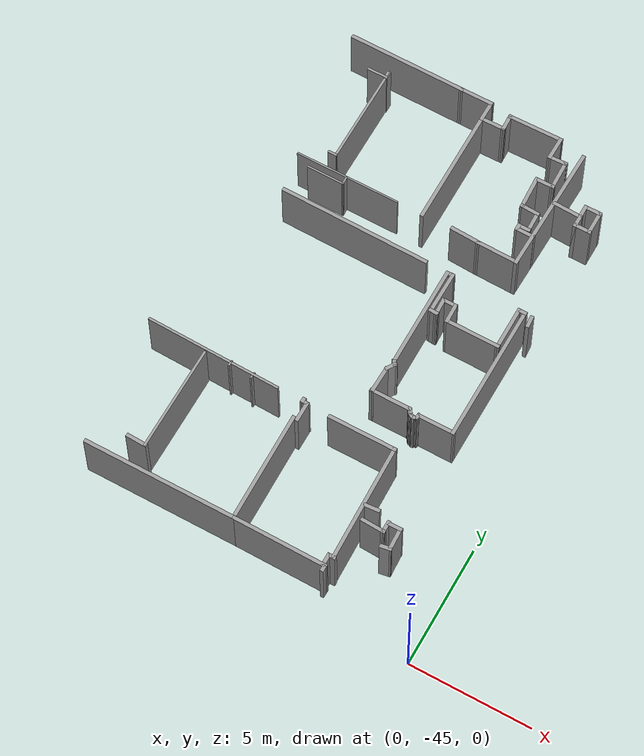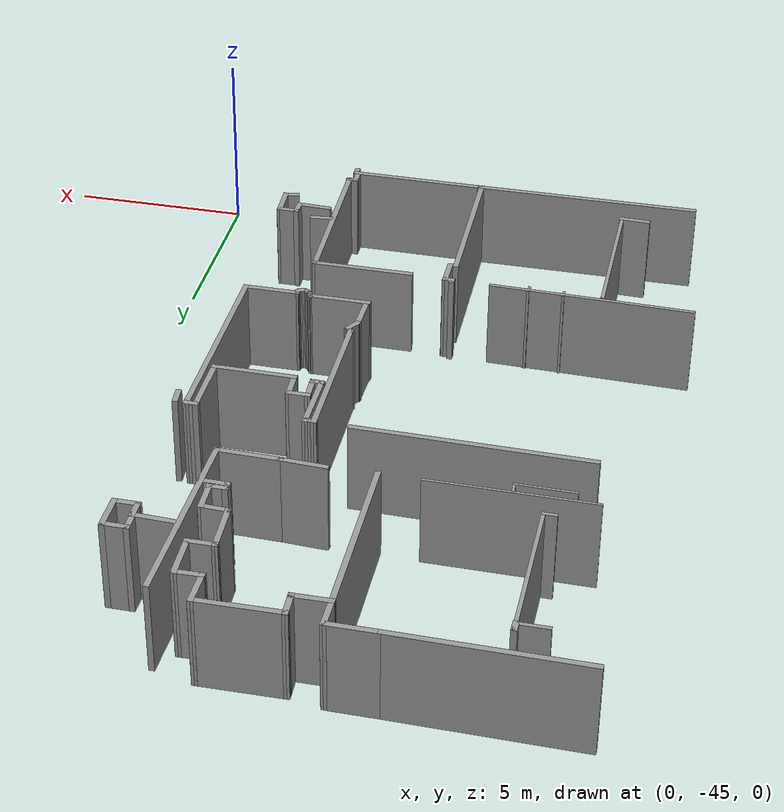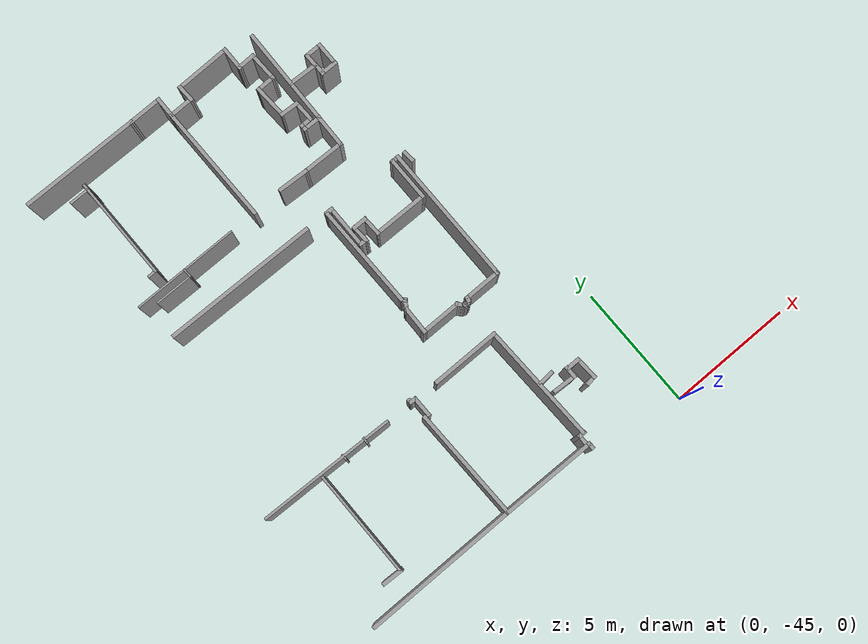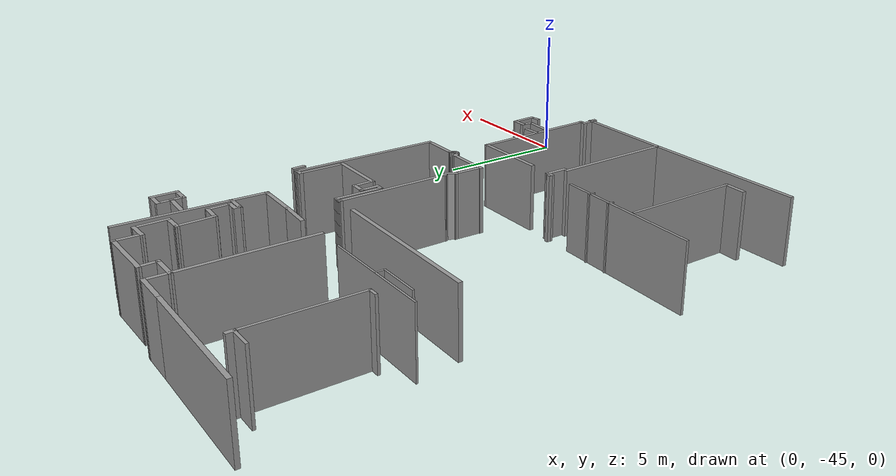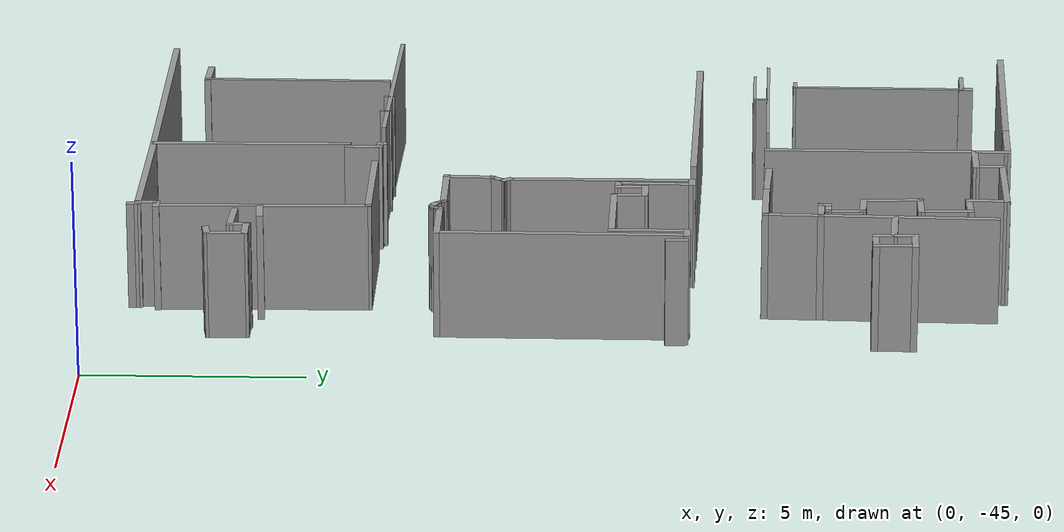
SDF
<sdf version="1.4">
 <model name="3ne_real">
  <pose>-14.229 -33.4428 0 0 -0 0</pose>
  <link name="Wall_179">
   <collision name="Wall_179_Collision">
    <geometry><box><size>5.30295 0.15 2.5</size></box></geometry>
    <pose>0 0 1.25 0 -0 0</pose>
   </collision>
   <visual name="Wall_179_Visual">
    <pose>0 0 1.25 0 -0 0</pose>
    <geometry><box><size>5.30295 0.15 2.5</size></box></geometry>
    <material>
     <script><uri>file://media/materials/scripts/gazebo.material</uri><name>Gazebo/Grey</name></script>
     <ambient>1 1 1 1</ambient>
    </material>
    <meta><layer>0</layer></meta>
   </visual>
   <pose>10.5847 6.03444 0 0 -0 -1.59507</pose>
  </link>
  <link name="Wall_181">
   <collision name="Wall_181_Collision">
    <geometry><box><size>1.76561 0.15 2.5</size></box></geometry>
    <pose>0 0 1.25 0 -0 0</pose>
   </collision>
   <visual name="Wall_181_Visual">
    <pose>0 0 1.25 0 -0 0</pose>
    <geometry><box><size>1.76561 0.15 2.5</size></box></geometry>
    <material>
     <script><uri>file://media/materials/scripts/gazebo.material</uri><name>Gazebo/Grey</name></script>
     <ambient>1 1 1 1</ambient>
    </material>
    <meta><layer>0</layer></meta>
   </visual>
   <pose>9.71486 3.47607 0 0 -0 3.12047</pose>
  </link>
  <link name="Wall_182">
   <collision name="Wall_182_Collision">
    <geometry><box><size>1.26576 0.15 2.5</size></box></geometry>
    <pose>0 0 1.25 0 -0 0</pose>
   </collision>
   <visual name="Wall_182_Visual">
    <pose>0 0 1.25 0 -0 0</pose>
    <geometry><box><size>1.26576 0.15 2.5</size></box></geometry>
    <material>
     <script><uri>file://media/materials/scripts/gazebo.material</uri><name>Gazebo/Grey</name></script>
     <ambient>1 1 1 1</ambient>
    </material>
    <meta><layer>0</layer></meta>
   </visual>
   <pose>8.3504 3.52156 0 0 -0 3.09062</pose>
  </link>
  <link name="Wall_184">
   <collision name="Wall_184_Collision">
    <geometry><box><size>4.86877 0.15 2.5</size></box></geometry>
    <pose>0 0 1.25 0 -0 0</pose>
   </collision>
   <visual name="Wall_184_Visual">
    <pose>0 0 1.25 0 -0 0</pose>
    <geometry><box><size>4.86877 0.15 2.5</size></box></geometry>
    <material>
     <script><uri>file://media/materials/scripts/gazebo.material</uri><name>Gazebo/Grey</name></script>
     <ambient>1 1 1 1</ambient>
    </material>
    <meta><layer>0</layer></meta>
   </visual>
   <pose>6.52544 5.87525 0 0 -0 1.57321</pose>
  </link>
  <link name="Wall_185">
   <collision name="Wall_185_Collision">
    <geometry><box><size>1.07108 0.15 2.5</size></box></geometry>
    <pose>0 0 1.25 0 -0 0</pose>
   </collision>
   <visual name="Wall_185_Visual">
    <pose>0 0 1.25 0 -0 0</pose>
    <geometry><box><size>1.07108 0.15 2.5</size></box></geometry>
    <material>
     <script><uri>file://media/materials/scripts/gazebo.material</uri><name>Gazebo/Grey</name></script>
     <ambient>1 1 1 1</ambient>
    </material>
    <meta><layer>0</layer></meta>
   </visual>
   <pose>6.98026 8.24031 0 0 -0 0.012345</pose>
  </link>
  <link name="Wall_186">
   <collision name="Wall_186_Collision">
    <geometry><box><size>0.741703 0.15 2.5</size></box></geometry>
    <pose>0 0 1.25 0 -0 0</pose>
   </collision>
   <visual name="Wall_186_Visual">
    <pose>0 0 1.25 0 -0 0</pose>
    <geometry><box><size>0.741703 0.15 2.5</size></box></geometry>
    <material>
     <script><uri>file://media/materials/scripts/gazebo.material</uri><name>Gazebo/Grey</name></script>
     <ambient>1 1 1 1</ambient>
    </material>
    <meta><layer>0</layer></meta>
   </visual>
   <pose>7.42939 8.54163 0 0 -0 1.60924</pose>
  </link>
  <link name="Wall_187">
   <collision name="Wall_187_Collision">
    <geometry><box><size>2.28792 0.15 2.5</size></box></geometry>
    <pose>0 0 1.25 0 -0 0</pose>
   </collision>
   <visual name="Wall_187_Visual">
    <pose>0 0 1.25 0 -0 0</pose>
    <geometry><box><size>2.28792 0.15 2.5</size></box></geometry>
    <material>
     <script><uri>file://media/materials/scripts/gazebo.material</uri><name>Gazebo/Grey</name></script>
     <ambient>1 1 1 1</ambient>
    </material>
    <meta><layer>0</layer></meta>
   </visual>
   <pose>8.48685 8.85432 0 0 -0 0.015956</pose>
  </link>
  <link name="Wall_188">
   <collision name="Wall_188_Collision">
    <geometry><box><size>1.00286 0.15 2.5</size></box></geometry>
    <pose>0 0 1.25 0 -0 0</pose>
   </collision>
   <visual name="Wall_188_Visual">
    <pose>0 0 1.25 0 -0 0</pose>
    <geometry><box><size>1.00286 0.15 2.5</size></box></geometry>
    <material>
     <script><uri>file://media/materials/scripts/gazebo.material</uri><name>Gazebo/Grey</name></script>
     <ambient>1 1 1 1</ambient>
    </material>
    <meta><layer>0</layer></meta>
   </visual>
   <pose>9.54999 8.44498 0 0 -0 -1.58413</pose>
  </link>
  <link name="Wall_189">
   <collision name="Wall_189_Collision">
    <geometry><box><size>0.798218 0.15 2.5</size></box></geometry>
    <pose>0 0 1.25 0 -0 0</pose>
   </collision>
   <visual name="Wall_189_Visual">
    <pose>0 0 1.25 0 -0 0</pose>
    <geometry><box><size>0.798218 0.15 2.5</size></box></geometry>
    <material>
     <script><uri>file://media/materials/scripts/gazebo.material</uri><name>Gazebo/Grey</name></script>
     <ambient>1 1 1 1</ambient>
    </material>
    <meta><layer>0</layer></meta>
   </visual>
   <pose>9.86836 8.02996 0 0 -0 0.035073</pose>
  </link>
  <link name="Wall_190">
   <collision name="Wall_190_Collision">
    <geometry><box><size>1.25347 0.15 2.5</size></box></geometry>
    <pose>0 0 1.25 0 -0 0</pose>
   </collision>
   <visual name="Wall_190_Visual">
    <pose>0 0 1.25 0 -0 0</pose>
    <geometry><box><size>1.25347 0.15 2.5</size></box></geometry>
    <material>
     <script><uri>file://media/materials/scripts/gazebo.material</uri><name>Gazebo/Grey</name></script>
     <ambient>1 1 1 1</ambient>
    </material>
    <meta><layer>0</layer></meta>
   </visual>
   <pose>10.2095 7.48986 0 0 -0 -1.53988</pose>
  </link>
  <link name="Wall_191">
   <collision name="Wall_191_Collision">
    <geometry><box><size>0.821245 0.15 2.5</size></box></geometry>
    <pose>0 0 1.25 0 -0 0</pose>
   </collision>
   <visual name="Wall_191_Visual">
    <pose>0 0 1.25 0 -0 0</pose>
    <geometry><box><size>0.821245 0.15 2.5</size></box></geometry>
    <material>
     <script><uri>file://media/materials/scripts/gazebo.material</uri><name>Gazebo/Grey</name></script>
     <ambient>1 1 1 1</ambient>
    </material>
    <meta><layer>0</layer></meta>
   </visual>
   <pose>9.8911 6.93271 0 0 -0 -3.12465</pose>
  </link>
  <link name="Wall_192">
   <collision name="Wall_192_Collision">
    <geometry><box><size>1.41341 0.15 2.5</size></box></geometry>
    <pose>0 0 1.25 0 -0 0</pose>
   </collision>
   <visual name="Wall_192_Visual">
    <pose>0 0 1.25 0 -0 0</pose>
    <geometry><box><size>1.41341 0.15 2.5</size></box></geometry>
    <material>
     <script><uri>file://media/materials/scripts/gazebo.material</uri><name>Gazebo/Grey</name></script>
     <ambient>1 1 1 1</ambient>
    </material>
    <meta><layer>0</layer></meta>
   </visual>
   <pose>9.5841 6.29596 0 0 -0 -1.52578</pose>
  </link>
  <link name="Wall_193">
   <collision name="Wall_193_Collision">
    <geometry><box><size>0.81037 0.15 2.5</size></box></geometry>
    <pose>0 0 1.25 0 -0 0</pose>
   </collision>
   <visual name="Wall_193_Visual">
    <pose>0 0 1.25 0 -0 0</pose>
    <geometry><box><size>0.81037 0.15 2.5</size></box></geometry>
    <material>
     <script><uri>file://media/materials/scripts/gazebo.material</uri><name>Gazebo/Grey</name></script>
     <ambient>1 1 1 1</ambient>
    </material>
    <meta><layer>0</layer></meta>
   </visual>
   <pose>9.94227 5.64784 0 0 -0 -0.051678</pose>
  </link>
  <link name="Wall_194">
   <collision name="Wall_194_Collision">
    <geometry><box><size>0.912163 0.15 2.5</size></box></geometry>
    <pose>0 0 1.25 0 -0 0</pose>
   </collision>
   <visual name="Wall_194_Visual">
    <pose>0 0 1.25 0 -0 0</pose>
    <geometry><box><size>0.912163 0.15 2.5</size></box></geometry>
    <material>
     <script><uri>file://media/materials/scripts/gazebo.material</uri><name>Gazebo/Grey</name></script>
     <ambient>1 1 1 1</ambient>
    </material>
    <meta><layer>0</layer></meta>
   </visual>
   <pose>10.2834 5.24987 0 0 -0 -1.54095</pose>
  </link>
  <link name="Wall_195">
   <collision name="Wall_195_Collision">
    <geometry><box><size>0.547967 0.15 2.5</size></box></geometry>
    <pose>0 0 1.25 0 -0 0</pose>
   </collision>
   <visual name="Wall_195_Visual">
    <pose>0 0 1.25 0 -0 0</pose>
    <geometry><box><size>0.547967 0.15 2.5</size></box></geometry>
    <material>
     <script><uri>file://media/materials/scripts/gazebo.material</uri><name>Gazebo/Grey</name></script>
     <ambient>1 1 1 1</ambient>
    </material>
    <meta><layer>0</layer></meta>
   </visual>
   <pose>10.0958 4.86896 0 0 -0 3.14159</pose>
  </link>
  <link name="Wall_197">
   <collision name="Wall_197_Collision">
    <geometry><box><size>0.309593 0.15 2.5</size></box></geometry>
    <pose>0 0 1.25 0 -0 0</pose>
   </collision>
   <visual name="Wall_197_Visual">
    <pose>0 0 1.25 0 -0 0</pose>
    <geometry><box><size>0.309593 0.15 2.5</size></box></geometry>
    <material>
     <script><uri>file://media/materials/scripts/gazebo.material</uri><name>Gazebo/Grey</name></script>
     <ambient>1 1 1 1</ambient>
    </material>
    <meta><layer>0</layer></meta>
   </visual>
   <pose>9.89679 4.78937 0 0 -0 -1.5708</pose>
  </link>
  <link name="Wall_198">
   <collision name="Wall_198_Collision">
    <geometry><box><size>0.809489 0.15 2.5</size></box></geometry>
    <pose>0 0 1.25 0 -0 0</pose>
   </collision>
   <visual name="Wall_198_Visual">
    <pose>0 0 1.25 0 -0 0</pose>
    <geometry><box><size>0.809489 0.15 2.5</size></box></geometry>
    <material>
     <script><uri>file://media/materials/scripts/gazebo.material</uri><name>Gazebo/Grey</name></script>
     <ambient>1 1 1 1</ambient>
    </material>
    <meta><layer>0</layer></meta>
   </visual>
   <pose>10.2265 4.70409 0 0 -0 -0.01724</pose>
  </link>
  <link name="Wall_200">
   <collision name="Wall_200_Collision">
    <geometry><box><size>0.905609 0.15 2.5</size></box></geometry>
    <pose>0 0 1.25 0 -0 0</pose>
   </collision>
   <visual name="Wall_200_Visual">
    <pose>0 0 1.25 0 -0 0</pose>
    <geometry><box><size>0.905609 0.15 2.5</size></box></geometry>
    <material>
     <script><uri>file://media/materials/scripts/gazebo.material</uri><name>Gazebo/Grey</name></script>
     <ambient>1 1 1 1</ambient>
    </material>
    <meta><layer>0</layer></meta>
   </visual>
   <pose>6.52348 8.61229 0 0 -0 1.56093</pose>
  </link>
  <link name="Wall_201">
   <collision name="Wall_201_Collision">
    <geometry><box><size>1.43145 0.15 2.5</size></box></geometry>
    <pose>0 0 1.25 0 -0 0</pose>
   </collision>
   <visual name="Wall_201_Visual">
    <pose>0 0 1.25 0 -0 0</pose>
    <geometry><box><size>1.43145 0.15 2.5</size></box></geometry>
    <material>
     <script><uri>file://media/materials/scripts/gazebo.material</uri><name>Gazebo/Grey</name></script>
     <ambient>1 1 1 1</ambient>
    </material>
    <meta><layer>0</layer></meta>
   </visual>
   <pose>5.88648 8.98996 0 0 -0 3.14159</pose>
  </link>
  <link name="Wall_202">
   <collision name="Wall_202_Collision">
    <geometry><box><size>4.8837 0.15 2.5</size></box></geometry>
    <pose>0 0 1.25 0 -0 0</pose>
   </collision>
   <visual name="Wall_202_Visual">
    <pose>0 0 1.25 0 -0 0</pose>
    <geometry><box><size>4.8837 0.15 2.5</size></box></geometry>
    <material>
     <script><uri>file://media/materials/scripts/gazebo.material</uri><name>Gazebo/Grey</name></script>
     <ambient>1 1 1 1</ambient>
    </material>
    <meta><layer>0</layer></meta>
   </visual>
   <pose>2.87898 9.00957 0 0 -0 3.13331</pose>
  </link>
  <link name="Wall_207">
   <collision name="Wall_207_Collision">
    <geometry><box><size>0.845649 0.1 2.5</size></box></geometry>
    <pose>0 0 1.25 0 -0 0</pose>
   </collision>
   <visual name="Wall_207_Visual">
    <pose>0 0 1.25 0 -0 0</pose>
    <geometry><box><size>0.845649 0.1 2.5</size></box></geometry>
    <material>
     <script><uri>file://media/materials/scripts/gazebo.material</uri><name>Gazebo/Grey</name></script>
     <ambient>1 1 1 1</ambient>
    </material>
    <meta><layer>0</layer></meta>
   </visual>
   <pose>2.10097 8.06175 0 0 -0 0</pose>
  </link>
  <link name="Wall_208">
   <collision name="Wall_208_Collision">
    <geometry><box><size>0.333065 0.15 2.5</size></box></geometry>
    <pose>0 0 1.25 0 -0 0</pose>
   </collision>
   <visual name="Wall_208_Visual">
    <pose>0 0 1.25 0 -0 0</pose>
    <geometry><box><size>0.333065 0.15 2.5</size></box></geometry>
    <material>
     <script><uri>file://media/materials/scripts/gazebo.material</uri><name>Gazebo/Grey</name></script>
     <ambient>1 1 1 1</ambient>
    </material>
    <meta><layer>0</layer></meta>
   </visual>
   <pose>2.47397 8.15325 0 0 -0 1.5708</pose>
  </link>
  <link name="Wall_209">
   <collision name="Wall_209_Collision">
    <geometry><box><size>4.17989 0.1 2.5</size></box></geometry>
    <pose>0 0 1.25 0 -0 0</pose>
   </collision>
   <visual name="Wall_209_Visual">
    <pose>0 0 1.25 0 -0 0</pose>
    <geometry><box><size>4.17989 0.1 2.5</size></box></geometry>
    <material>
     <script><uri>file://media/materials/scripts/gazebo.material</uri><name>Gazebo/Grey</name></script>
     <ambient>1 1 1 1</ambient>
    </material>
    <meta><layer>0</layer></meta>
   </visual>
   <pose>2.46747 6.20475 0 0 -0 -1.57398</pose>
  </link>
  <link name="Wall_210">
   <collision name="Wall_210_Collision">
    <geometry><box><size>0.3881 0.1 2.5</size></box></geometry>
    <pose>0 0 1.25 0 -0 0</pose>
   </collision>
   <visual name="Wall_210_Visual">
    <pose>0 0 1.25 0 -0 0</pose>
    <geometry><box><size>0.3881 0.1 2.5</size></box></geometry>
    <material>
     <script><uri>file://media/materials/scripts/gazebo.material</uri><name>Gazebo/Grey</name></script>
     <ambient>1 1 1 1</ambient>
    </material>
    <meta><layer>0</layer></meta>
   </visual>
   <pose>2.31697 4.16475 0 0 -0 3.14159</pose>
  </link>
  <link name="Wall_215">
   <collision name="Wall_215_Collision">
    <geometry><box><size>4.31994 0.07 2.5</size></box></geometry>
    <pose>0 0 1.25 0 -0 0</pose>
   </collision>
   <visual name="Wall_215_Visual">
    <pose>0 0 1.25 0 -0 0</pose>
    <geometry><box><size>4.31994 0.07 2.5</size></box></geometry>
    <material>
     <script><uri>file://media/materials/scripts/gazebo.material</uri><name>Gazebo/Grey</name></script>
     <ambient>1 1 1 1</ambient>
    </material>
    <meta><layer>0</layer></meta>
   </visual>
   <pose>3.31697 3.53025 0 0 -0 -0.003059</pose>
  </link>
  <link name="Wall_218">
   <collision name="Wall_218_Collision">
    <geometry><box><size>1.5605 0.07 2.5</size></box></geometry>
    <pose>0 0 1.25 0 -0 0</pose>
   </collision>
   <visual name="Wall_218_Visual">
    <pose>0 0 1.25 0 -0 0</pose>
    <geometry><box><size>1.5605 0.07 2.5</size></box></geometry>
    <material>
     <script><uri>file://media/materials/scripts/gazebo.material</uri><name>Gazebo/Grey</name></script>
     <ambient>1 1 1 1</ambient>
    </material>
    <meta><layer>0</layer></meta>
   </visual>
   <pose>2.55197 3.21725 0 0 -0 -0.008725</pose>
  </link>
  <link name="Wall_219">
   <collision name="Wall_219_Collision">
    <geometry><box><size>0.357532 0.07 2.5</size></box></geometry>
    <pose>0 0 1.25 0 -0 0</pose>
   </collision>
   <visual name="Wall_219_Visual">
    <pose>0 0 1.25 0 -0 0</pose>
    <geometry><box><size>0.357532 0.07 2.5</size></box></geometry>
    <material>
     <script><uri>file://media/materials/scripts/gazebo.material</uri><name>Gazebo/Grey</name></script>
     <ambient>1 1 1 1</ambient>
    </material>
    <meta><layer>0</layer></meta>
   </visual>
   <pose>3.29047 3.35426 0 0 -0 1.61606</pose>
  </link>
  <link name="Wall_321">
   <collision name="Wall_321_Collision">
    <geometry><box><size>0.865241 0.15 2.5</size></box></geometry>
    <pose>0 0 1.25 0 -0 0</pose>
   </collision>
   <visual name="Wall_321_Visual">
    <pose>0 0 1.25 0 -0 0</pose>
    <geometry><box><size>0.865241 0.15 2.5</size></box></geometry>
    <material>
     <script><uri>file://media/materials/scripts/gazebo.material</uri><name>Gazebo/Grey</name></script>
     <ambient>1 1 1 1</ambient>
    </material>
    <meta><layer>0</layer></meta>
   </visual>
   <pose>1.94721 -9.63542 0 0 -0 -0.035841</pose>
  </link>
  <link name="Wall_322">
   <collision name="Wall_322_Collision">
    <geometry><box><size>4.3514 0.1 2.5</size></box></geometry>
    <pose>0 0 1.25 0 -0 0</pose>
   </collision>
   <visual name="Wall_322_Visual">
    <pose>0 0 1.25 0 -0 0</pose>
    <geometry><box><size>4.3514 0.1 2.5</size></box></geometry>
    <material>
     <script><uri>file://media/materials/scripts/gazebo.material</uri><name>Gazebo/Grey</name></script>
     <ambient>1 1 1 1</ambient>
    </material>
    <meta><layer>0</layer></meta>
   </visual>
   <pose>2.31147 -7.52275 0 0 -0 1.56774</pose>
  </link>
  <link name="Wall_324">
   <collision name="Wall_324_Collision">
    <geometry><box><size>5.56298 0.1 2.5</size></box></geometry>
    <pose>0 0 1.25 0 -0 0</pose>
   </collision>
   <visual name="Wall_324_Visual">
    <pose>0 0 1.25 0 -0 0</pose>
    <geometry><box><size>5.56298 0.1 2.5</size></box></geometry>
    <material>
     <script><uri>file://media/materials/scripts/gazebo.material</uri><name>Gazebo/Grey</name></script>
     <ambient>1 1 1 1</ambient>
    </material>
    <meta><layer>0</layer></meta>
   </visual>
   <pose>2.60347 -5.26075 0 0 -0 -0.02618</pose>
  </link>
  <link name="Wall_326">
   <collision name="Wall_326_Collision">
    <geometry><box><size>0.250066 0.07 2.5</size></box></geometry>
    <pose>0 0 1.25 0 -0 0</pose>
   </collision>
   <visual name="Wall_326_Visual">
    <pose>0 0 1.25 0 -0 0</pose>
    <geometry><box><size>0.250066 0.07 2.5</size></box></geometry>
    <material>
     <script><uri>file://media/materials/scripts/gazebo.material</uri><name>Gazebo/Grey</name></script>
     <ambient>1 1 1 1</ambient>
    </material>
    <meta><layer>0</layer></meta>
   </visual>
   <pose>3.35997 -5.31625 0 0 -0 1.53747</pose>
  </link>
  <link name="Wall_328">
   <collision name="Wall_328_Collision">
    <geometry><box><size>0.266817 0.07 2.5</size></box></geometry>
    <pose>0 0 1.25 0 -0 0</pose>
   </collision>
   <visual name="Wall_328_Visual">
    <pose>0 0 1.25 0 -0 0</pose>
    <geometry><box><size>0.266817 0.07 2.5</size></box></geometry>
    <material>
     <script><uri>file://media/materials/scripts/gazebo.material</uri><name>Gazebo/Grey</name></script>
     <ambient>1 1 1 1</ambient>
    </material>
    <meta><layer>0</layer></meta>
   </visual>
   <pose>4.31247 -5.34725 0 0 -0 1.51473</pose>
  </link>
  <link name="Wall_374">
   <collision name="Wall_374_Collision">
    <geometry><box><size>0.229144 0.15 2.5</size></box></geometry>
    <pose>0 0 1.25 0 -0 0</pose>
   </collision>
   <visual name="Wall_374_Visual">
    <pose>0 0 1.25 0 -0 0</pose>
    <geometry><box><size>0.229144 0.15 2.5</size></box></geometry>
    <material>
     <script><uri>file://media/materials/scripts/gazebo.material</uri><name>Gazebo/Grey</name></script>
     <ambient>1 1 1 1</ambient>
    </material>
    <meta><layer>0</layer></meta>
   </visual>
   <pose>6.41446 -5.31539 0 0 -0 -1.5708</pose>
  </link>
  <link name="Wall_375">
   <collision name="Wall_375_Collision">
    <geometry><box><size>0.343533 0.15 2.5</size></box></geometry>
    <pose>0 0 1.25 0 -0 0</pose>
   </collision>
   <visual name="Wall_375_Visual">
    <pose>0 0 1.25 0 -0 0</pose>
    <geometry><box><size>0.343533 0.15 2.5</size></box></geometry>
    <material>
     <script><uri>file://media/materials/scripts/gazebo.material</uri><name>Gazebo/Grey</name></script>
     <ambient>1 1 1 1</ambient>
    </material>
    <meta><layer>0</layer></meta>
   </visual>
   <pose>6.51056 -5.36061 0 0 -0 -0.058756</pose>
  </link>
  <link name="Wall_376">
   <collision name="Wall_376_Collision">
    <geometry><box><size>0.873603 0.15 2.5</size></box></geometry>
    <pose>0 0 1.25 0 -0 0</pose>
   </collision>
   <visual name="Wall_376_Visual">
    <pose>0 0 1.25 0 -0 0</pose>
    <geometry><box><size>0.873603 0.15 2.5</size></box></geometry>
    <material>
     <script><uri>file://media/materials/scripts/gazebo.material</uri><name>Gazebo/Grey</name></script>
     <ambient>1 1 1 1</ambient>
    </material>
    <meta><layer>0</layer></meta>
   </visual>
   <pose>6.60666 -5.72807 0 0 -0 -1.5708</pose>
  </link>
  <link name="Wall_378">
   <collision name="Wall_378_Collision">
    <geometry><box><size>4.57128 0.15 2.5</size></box></geometry>
    <pose>0 0 1.25 0 -0 0</pose>
   </collision>
   <visual name="Wall_378_Visual">
    <pose>0 0 1.25 0 -0 0</pose>
    <geometry><box><size>4.57128 0.15 2.5</size></box></geometry>
    <material>
     <script><uri>file://media/materials/scripts/gazebo.material</uri><name>Gazebo/Grey</name></script>
     <ambient>1 1 1 1</ambient>
    </material>
    <meta><layer>0</layer></meta>
   </visual>
   <pose>6.4823 -8.31156 0 0 -0 -1.55545</pose>
  </link>
  <link name="Wall_380">
   <collision name="Wall_380_Collision">
    <geometry><box><size>2.8185 0.15 2.5</size></box></geometry>
    <pose>0 0 1.25 0 -0 0</pose>
   </collision>
   <visual name="Wall_380_Visual">
    <pose>0 0 1.25 0 -0 0</pose>
    <geometry><box><size>2.8185 0.15 2.5</size></box></geometry>
    <material>
     <script><uri>file://media/materials/scripts/gazebo.material</uri><name>Gazebo/Grey</name></script>
     <ambient>1 1 1 1</ambient>
    </material>
    <meta><layer>0</layer></meta>
   </visual>
   <pose>8.92446 -5.41149 0 0 -0 0</pose>
  </link>
  <link name="Wall_381">
   <collision name="Wall_381_Collision">
    <geometry><box><size>4.84376 0.15 2.5</size></box></geometry>
    <pose>0 0 1.25 0 -0 0</pose>
   </collision>
   <visual name="Wall_381_Visual">
    <pose>0 0 1.25 0 -0 0</pose>
    <geometry><box><size>4.84376 0.15 2.5</size></box></geometry>
    <material>
     <script><uri>file://media/materials/scripts/gazebo.material</uri><name>Gazebo/Grey</name></script>
     <ambient>1 1 1 1</ambient>
    </material>
    <meta><layer>0</layer></meta>
   </visual>
   <pose>10.3208 -7.75755 0 0 -0 -1.5443</pose>
  </link>
  <link name="Wall_384">
   <collision name="Wall_384_Collision">
    <geometry><box><size>0.568333 0.15 2.5</size></box></geometry>
    <pose>0 0 1.25 0 -0 0</pose>
   </collision>
   <visual name="Wall_384_Visual">
    <pose>0 0 1.25 0 -0 0</pose>
    <geometry><box><size>0.568333 0.15 2.5</size></box></geometry>
    <material>
     <script><uri>file://media/materials/scripts/gazebo.material</uri><name>Gazebo/Grey</name></script>
     <ambient>1 1 1 1</ambient>
    </material>
    <meta><layer>0</layer></meta>
   </visual>
   <pose>10.2021 -10.358 0 0 -0 1.5708</pose>
  </link>
  <link name="Wall_385">
   <collision name="Wall_385_Collision">
    <geometry><box><size>0.353513 0.15 2.5</size></box></geometry>
    <pose>0 0 1.25 0 -0 0</pose>
   </collision>
   <visual name="Wall_385_Visual">
    <pose>0 0 1.25 0 -0 0</pose>
    <geometry><box><size>0.353513 0.15 2.5</size></box></geometry>
    <material>
     <script><uri>file://media/materials/scripts/gazebo.material</uri><name>Gazebo/Grey</name></script>
     <ambient>1 1 1 1</ambient>
    </material>
    <meta><layer>0</layer></meta>
   </visual>
   <pose>10.3038 -10.1488 0 0 -0 0</pose>
  </link>
  <link name="Wall_387">
   <collision name="Wall_387_Collision">
    <geometry><box><size>1.71027 0.15 2.5</size></box></geometry>
    <pose>0 0 1.25 0 -0 0</pose>
   </collision>
   <visual name="Wall_387_Visual">
    <pose>0 0 1.25 0 -0 0</pose>
    <geometry><box><size>1.71027 0.15 2.5</size></box></geometry>
    <material>
     <script><uri>file://media/materials/scripts/gazebo.material</uri><name>Gazebo/Grey</name></script>
     <ambient>1 1 1 1</ambient>
    </material>
    <meta><layer>0</layer></meta>
   </visual>
   <pose>9.17449 -3.7398 0 0 -0 0</pose>
  </link>
  <link name="Wall_388">
   <collision name="Wall_388_Collision">
    <geometry><box><size>0.251551 0.15 2.5</size></box></geometry>
    <pose>0 0 1.25 0 -0 0</pose>
   </collision>
   <visual name="Wall_388_Visual">
    <pose>0 0 1.25 0 -0 0</pose>
    <geometry><box><size>0.251551 0.15 2.5</size></box></geometry>
    <material>
     <script><uri>file://media/materials/scripts/gazebo.material</uri><name>Gazebo/Grey</name></script>
     <ambient>1 1 1 1</ambient>
    </material>
    <meta><layer>0</layer></meta>
   </visual>
   <pose>9.98713 -3.77881 0 0 -0 -0.876058</pose>
  </link>
  <link name="Wall_389">
   <collision name="Wall_389_Collision">
    <geometry><box><size>0.269875 0.15 2.5</size></box></geometry>
    <pose>0 0 1.25 0 -0 0</pose>
   </collision>
   <visual name="Wall_389_Visual">
    <pose>0 0 1.25 0 -0 0</pose>
    <geometry><box><size>0.269875 0.15 2.5</size></box></geometry>
    <material>
     <script><uri>file://media/materials/scripts/gazebo.material</uri><name>Gazebo/Grey</name></script>
     <ambient>1 1 1 1</ambient>
    </material>
    <meta><layer>0</layer></meta>
   </visual>
   <pose>10.0586 -3.86332 0 0 -0 -0.86217</pose>
  </link>
  <link name="Wall_390">
   <collision name="Wall_390_Collision">
    <geometry><box><size>0.225815 0.15 2.5</size></box></geometry>
    <pose>0 0 1.25 0 -0 0</pose>
   </collision>
   <visual name="Wall_390_Visual">
    <pose>0 0 1.25 0 -0 0</pose>
    <geometry><box><size>0.225815 0.15 2.5</size></box></geometry>
    <material>
     <script><uri>file://media/materials/scripts/gazebo.material</uri><name>Gazebo/Grey</name></script>
     <ambient>1 1 1 1</ambient>
    </material>
    <meta><layer>0</layer></meta>
   </visual>
   <pose>10.1301 -3.92833 0 0 -0 -0.54042</pose>
  </link>
  <link name="Wall_391">
   <collision name="Wall_391_Collision">
    <geometry><box><size>0.24194 0.15 2.5</size></box></geometry>
    <pose>0 0 1.25 0 -0 0</pose>
   </collision>
   <visual name="Wall_391_Visual">
    <pose>0 0 1.25 0 -0 0</pose>
    <geometry><box><size>0.24194 0.15 2.5</size></box></geometry>
    <material>
     <script><uri>file://media/materials/scripts/gazebo.material</uri><name>Gazebo/Grey</name></script>
     <ambient>1 1 1 1</ambient>
    </material>
    <meta><layer>0</layer></meta>
   </visual>
   <pose>10.2082 -3.95434 0 0 -0 -0.141897</pose>
  </link>
  <link name="Wall_392">
   <collision name="Wall_392_Collision">
    <geometry><box><size>0.254827 0.15 2.5</size></box></geometry>
    <pose>0 0 1.25 0 -0 0</pose>
   </collision>
   <visual name="Wall_392_Visual">
    <pose>0 0 1.25 0 -0 0</pose>
    <geometry><box><size>0.254827 0.15 2.5</size></box></geometry>
    <material>
     <script><uri>file://media/materials/scripts/gazebo.material</uri><name>Gazebo/Grey</name></script>
     <ambient>1 1 1 1</ambient>
    </material>
    <meta><layer>0</layer></meta>
   </visual>
   <pose>10.2992 -3.93483 0 0 -0 0.519146</pose>
  </link>
  <link name="Wall_393">
   <collision name="Wall_393_Collision">
    <geometry><box><size>0.257219 0.15 2.5</size></box></geometry>
    <pose>0 0 1.25 0 -0 0</pose>
   </collision>
   <visual name="Wall_393_Visual">
    <pose>0 0 1.25 0 -0 0</pose>
    <geometry><box><size>0.257219 0.15 2.5</size></box></geometry>
    <material>
     <script><uri>file://media/materials/scripts/gazebo.material</uri><name>Gazebo/Grey</name></script>
     <ambient>1 1 1 1</ambient>
    </material>
    <meta><layer>0</layer></meta>
   </visual>
   <pose>10.3577 -3.85682 0 0 -0 1.32582</pose>
  </link>
  <link name="Wall_394">
   <collision name="Wall_394_Collision">
    <geometry><box><size>1.56748 0.15 2.5</size></box></geometry>
    <pose>0 0 1.25 0 -0 0</pose>
   </collision>
   <visual name="Wall_394_Visual">
    <pose>0 0 1.25 0 -0 0</pose>
    <geometry><box><size>1.56748 0.15 2.5</size></box></geometry>
    <material>
     <script><uri>file://media/materials/scripts/gazebo.material</uri><name>Gazebo/Grey</name></script>
     <ambient>1 1 1 1</ambient>
    </material>
    <meta><layer>0</layer></meta>
   </visual>
   <pose>11.0793 -3.80481 0 0 -0 0</pose>
  </link>
  <link name="Wall_396">
   <collision name="Wall_396_Collision">
    <geometry><box><size>5.68897 0.15 2.5</size></box></geometry>
    <pose>0 0 1.25 0 -0 0</pose>
   </collision>
   <visual name="Wall_396_Visual">
    <pose>0 0 1.25 0 -0 0</pose>
    <geometry><box><size>5.68897 0.15 2.5</size></box></geometry>
    <material>
     <script><uri>file://media/materials/scripts/gazebo.material</uri><name>Gazebo/Grey</name></script>
     <ambient>1 1 1 1</ambient>
    </material>
    <meta><layer>0</layer></meta>
   </visual>
   <pose>11.7944 -1.03533 0 0 -0 1.56845</pose>
  </link>
  <link name="Wall_397">
   <collision name="Wall_397_Collision">
    <geometry><box><size>0.397384 0.15 2.5</size></box></geometry>
    <pose>0 0 1.25 0 -0 0</pose>
   </collision>
   <visual name="Wall_397_Visual">
    <pose>0 0 1.25 0 -0 0</pose>
    <geometry><box><size>0.397384 0.15 2.5</size></box></geometry>
    <material>
     <script><uri>file://media/materials/scripts/gazebo.material</uri><name>Gazebo/Grey</name></script>
     <ambient>1 1 1 1</ambient>
    </material>
    <meta><layer>0</layer></meta>
   </visual>
   <pose>11.6774 1.73414 0 0 -0 3.14159</pose>
  </link>
  <link name="Wall_398">
   <collision name="Wall_398_Collision">
    <geometry><box><size>1.82729 0.15 2.5</size></box></geometry>
    <pose>0 0 1.25 0 -0 0</pose>
   </collision>
   <visual name="Wall_398_Visual">
    <pose>0 0 1.25 0 -0 0</pose>
    <geometry><box><size>1.82729 0.15 2.5</size></box></geometry>
    <material>
     <script><uri>file://media/materials/scripts/gazebo.material</uri><name>Gazebo/Grey</name></script>
     <ambient>1 1 1 1</ambient>
    </material>
    <meta><layer>0</layer></meta>
   </visual>
   <pose>11.5539 0.895497 0 0 -0 -1.5708</pose>
  </link>
  <link name="Wall_399">
   <collision name="Wall_399_Collision">
    <geometry><box><size>2.2564 0.15 2.5</size></box></geometry>
    <pose>0 0 1.25 0 -0 0</pose>
   </collision>
   <visual name="Wall_399_Visual">
    <pose>0 0 1.25 0 -0 0</pose>
    <geometry><box><size>2.2564 0.15 2.5</size></box></geometry>
    <material>
     <script><uri>file://media/materials/scripts/gazebo.material</uri><name>Gazebo/Grey</name></script>
     <ambient>1 1 1 1</ambient>
    </material>
    <meta><layer>0</layer></meta>
   </visual>
   <pose>10.5007 0.063355 0 0 -0 3.13542</pose>
  </link>
  <link name="Wall_400">
   <collision name="Wall_400_Collision">
    <geometry><box><size>0.839609 0.15 2.5</size></box></geometry>
    <pose>0 0 1.25 0 -0 0</pose>
   </collision>
   <visual name="Wall_400_Visual">
    <pose>0 0 1.25 0 -0 0</pose>
    <geometry><box><size>0.839609 0.15 2.5</size></box></geometry>
    <material>
     <script><uri>file://media/materials/scripts/gazebo.material</uri><name>Gazebo/Grey</name></script>
     <ambient>1 1 1 1</ambient>
    </material>
    <meta><layer>0</layer></meta>
   </visual>
   <pose>9.43453 0.414414 0 0 -0 1.60851</pose>
  </link>
  <link name="Wall_401">
   <collision name="Wall_401_Collision">
    <geometry><box><size>0.644085 0.15 2.5</size></box></geometry>
    <pose>0 0 1.25 0 -0 0</pose>
   </collision>
   <visual name="Wall_401_Visual">
    <pose>0 0 1.25 0 -0 0</pose>
    <geometry><box><size>0.644085 0.15 2.5</size></box></geometry>
    <material>
     <script><uri>file://media/materials/scripts/gazebo.material</uri><name>Gazebo/Grey</name></script>
     <ambient>1 1 1 1</ambient>
    </material>
    <meta><layer>0</layer></meta>
   </visual>
   <pose>9.17449 0.758973 0 0 -0 3.14159</pose>
  </link>
  <link name="Wall_402">
   <collision name="Wall_402_Collision">
    <geometry><box><size>0.761658 0.15 2.5</size></box></geometry>
    <pose>0 0 1.25 0 -0 0</pose>
   </collision>
   <visual name="Wall_402_Visual">
    <pose>0 0 1.25 0 -0 0</pose>
    <geometry><box><size>0.761658 0.15 2.5</size></box></geometry>
    <material>
     <script><uri>file://media/materials/scripts/gazebo.material</uri><name>Gazebo/Grey</name></script>
     <ambient>1 1 1 1</ambient>
    </material>
    <meta><layer>0</layer></meta>
   </visual>
   <pose>8.94045 0.453424 0 0 -0 -1.52827</pose>
  </link>
  <link name="Wall_403">
   <collision name="Wall_403_Collision">
    <geometry><box><size>0.384401 0.15 2.5</size></box></geometry>
    <pose>0 0 1.25 0 -0 0</pose>
   </collision>
   <visual name="Wall_403_Visual">
    <pose>0 0 1.25 0 -0 0</pose>
    <geometry><box><size>0.384401 0.15 2.5</size></box></geometry>
    <material>
     <script><uri>file://media/materials/scripts/gazebo.material</uri><name>Gazebo/Grey</name></script>
     <ambient>1 1 1 1</ambient>
    </material>
    <meta><layer>0</layer></meta>
   </visual>
   <pose>8.83643 0.15437 0 0 -0 3.08609</pose>
  </link>
  <link name="Wall_404">
   <collision name="Wall_404_Collision">
    <geometry><box><size>1.80133 0.15 2.5</size></box></geometry>
    <pose>0 0 1.25 0 -0 0</pose>
   </collision>
   <visual name="Wall_404_Visual">
    <pose>0 0 1.25 0 -0 0</pose>
    <geometry><box><size>1.80133 0.15 2.5</size></box></geometry>
    <material>
     <script><uri>file://media/materials/scripts/gazebo.material</uri><name>Gazebo/Grey</name></script>
     <ambient>1 1 1 1</ambient>
    </material>
    <meta><layer>0</layer></meta>
   </visual>
   <pose>8.72591 0.986512 0 0 -0 1.56292</pose>
  </link>
  <link name="Wall_405">
   <collision name="Wall_405_Collision">
    <geometry><box><size>0.37142 0.15 2.5</size></box></geometry>
    <pose>0 0 1.25 0 -0 0</pose>
   </collision>
   <visual name="Wall_405_Visual">
    <pose>0 0 1.25 0 -0 0</pose>
    <geometry><box><size>0.37142 0.15 2.5</size></box></geometry>
    <material>
     <script><uri>file://media/materials/scripts/gazebo.material</uri><name>Gazebo/Grey</name></script>
     <ambient>1 1 1 1</ambient>
    </material>
    <meta><layer>0</layer></meta>
   </visual>
   <pose>8.62189 1.81216 0 0 -0 3.14159</pose>
  </link>
  <link name="Wall_406">
   <collision name="Wall_406_Collision">
    <geometry><box><size>4.27179 0.15 2.5</size></box></geometry>
    <pose>0 0 1.25 0 -0 0</pose>
   </collision>
   <visual name="Wall_406_Visual">
    <pose>0 0 1.25 0 -0 0</pose>
    <geometry><box><size>4.27179 0.15 2.5</size></box></geometry>
    <material>
     <script><uri>file://media/materials/scripts/gazebo.material</uri><name>Gazebo/Grey</name></script>
     <ambient>1 1 1 1</ambient>
    </material>
    <meta><layer>0</layer></meta>
   </visual>
   <pose>8.52437 -0.248698 0 0 -0 -1.56449</pose>
  </link>
  <link name="Wall_407">
   <collision name="Wall_407_Collision">
    <geometry><box><size>0.298248 0.15 2.5</size></box></geometry>
    <pose>0 0 1.25 0 -0 0</pose>
   </collision>
   <visual name="Wall_407_Visual">
    <pose>0 0 1.25 0 -0 0</pose>
    <geometry><box><size>0.298248 0.15 2.5</size></box></geometry>
    <material>
     <script><uri>file://media/materials/scripts/gazebo.material</uri><name>Gazebo/Grey</name></script>
     <ambient>1 1 1 1</ambient>
    </material>
    <meta><layer>0</layer></meta>
   </visual>
   <pose>8.58288 -2.36806 0 0 -0 -0.909753</pose>
  </link>
  <link name="Wall_408">
   <collision name="Wall_408_Collision">
    <geometry><box><size>0.489057 0.15 2.5</size></box></geometry>
    <pose>0 0 1.25 0 -0 0</pose>
   </collision>
   <visual name="Wall_408_Visual">
    <pose>0 0 1.25 0 -0 0</pose>
    <geometry><box><size>0.489057 0.15 2.5</size></box></geometry>
    <material>
     <script><uri>file://media/materials/scripts/gazebo.material</uri><name>Gazebo/Grey</name></script>
     <ambient>1 1 1 1</ambient>
    </material>
    <meta><layer>0</layer></meta>
   </visual>
   <pose>8.53738 -2.5696 0 0 -0 -2.13753</pose>
  </link>
  <link name="Wall_409">
   <collision name="Wall_409_Collision">
    <geometry><box><size>1.17726 0.15 2.5</size></box></geometry>
    <pose>0 0 1.25 0 -0 0</pose>
   </collision>
   <visual name="Wall_409_Visual">
    <pose>0 0 1.25 0 -0 0</pose>
    <geometry><box><size>1.17726 0.15 2.5</size></box></geometry>
    <material>
     <script><uri>file://media/materials/scripts/gazebo.material</uri><name>Gazebo/Grey</name></script>
     <ambient>1 1 1 1</ambient>
    </material>
    <meta><layer>0</layer></meta>
   </visual>
   <pose>8.43336 -3.22621 0 0 -0 -1.59611</pose>
  </link>
  <link name="Wall_427">
   <collision name="Wall_427_Collision">
    <geometry><box><size>6.22215 0.15 2.5</size></box></geometry>
    <pose>0 0 1.25 0 -0 0</pose>
   </collision>
   <visual name="Wall_427_Visual">
    <pose>0 0 1.25 0 -0 0</pose>
    <geometry><box><size>6.22215 0.15 2.5</size></box></geometry>
    <material>
     <script><uri>file://media/materials/scripts/gazebo.material</uri><name>Gazebo/Grey</name></script>
     <ambient>1 1 1 1</ambient>
    </material>
    <meta><layer>0</layer></meta>
   </visual>
   <pose>4.53577 1.88194 0 0 -0 -0.014896</pose>
  </link>
  <link name="Wall_517">
   <collision name="Wall_517_Collision">
    <geometry><box><size>1.27234 0.15 2.5</size></box></geometry>
    <pose>0 0 1.25 0 -0 0</pose>
   </collision>
   <visual name="Wall_517_Visual">
    <pose>0 0 1.25 0 -0 0</pose>
    <geometry><box><size>1.27234 0.15 2.5</size></box></geometry>
    <material>
     <script><uri>file://media/materials/scripts/gazebo.material</uri><name>Gazebo/Grey</name></script>
     <ambient>1 1 1 1</ambient>
    </material>
    <meta><layer>0</layer></meta>
   </visual>
   <pose>11.1625 6.32533 0 0 -0 -0.039979</pose>
  </link>
  <link name="Wall_518">
   <collision name="Wall_518_Collision">
    <geometry><box><size>0.553719 0.15 2.5</size></box></geometry>
    <pose>0 0 1.25 0 -0 0</pose>
   </collision>
   <visual name="Wall_518_Visual">
    <pose>0 0 1.25 0 -0 0</pose>
    <geometry><box><size>0.553719 0.15 2.5</size></box></geometry>
    <material>
     <script><uri>file://media/materials/scripts/gazebo.material</uri><name>Gazebo/Grey</name></script>
     <ambient>1 1 1 1</ambient>
    </material>
    <meta><layer>0</layer></meta>
   </visual>
   <pose>11.7232 6.10104 0 0 -0 -1.5708</pose>
  </link>
  <link name="Wall_519">
   <collision name="Wall_519_Collision">
    <geometry><box><size>0.733917 0.15 2.5</size></box></geometry>
    <pose>0 0 1.25 0 -0 0</pose>
   </collision>
   <visual name="Wall_519_Visual">
    <pose>0 0 1.25 0 -0 0</pose>
    <geometry><box><size>0.733917 0.15 2.5</size></box></geometry>
    <material>
     <script><uri>file://media/materials/scripts/gazebo.material</uri><name>Gazebo/Grey</name></script>
     <ambient>1 1 1 1</ambient>
    </material>
    <meta><layer>0</layer></meta>
   </visual>
   <pose>12.0148 5.89918 0 0 -0 0</pose>
  </link>
  <link name="Wall_520">
   <collision name="Wall_520_Collision">
    <geometry><box><size>1.01725 0.15 2.5</size></box></geometry>
    <pose>0 0 1.25 0 -0 0</pose>
   </collision>
   <visual name="Wall_520_Visual">
    <pose>0 0 1.25 0 -0 0</pose>
    <geometry><box><size>1.01725 0.15 2.5</size></box></geometry>
    <material>
     <script><uri>file://media/materials/scripts/gazebo.material</uri><name>Gazebo/Grey</name></script>
     <ambient>1 1 1 1</ambient>
    </material>
    <meta><layer>0</layer></meta>
   </visual>
   <pose>12.3063 6.33281 0 0 -0 1.5708</pose>
  </link>
  <link name="Wall_521">
   <collision name="Wall_521_Collision">
    <geometry><box><size>0.748103 0.15 2.5</size></box></geometry>
    <pose>0 0 1.25 0 -0 0</pose>
   </collision>
   <visual name="Wall_521_Visual">
    <pose>0 0 1.25 0 -0 0</pose>
    <geometry><box><size>0.748103 0.15 2.5</size></box></geometry>
    <material>
     <script><uri>file://media/materials/scripts/gazebo.material</uri><name>Gazebo/Grey</name></script>
     <ambient>1 1 1 1</ambient>
    </material>
    <meta><layer>0</layer></meta>
   </visual>
   <pose>12.0073 6.76643 0 0 -0 3.14159</pose>
  </link>
  <link name="Wall_522">
   <collision name="Wall_522_Collision">
    <geometry><box><size>0.538767 0.15 2.5</size></box></geometry>
    <pose>0 0 1.25 0 -0 0</pose>
   </collision>
   <visual name="Wall_522_Visual">
    <pose>0 0 1.25 0 -0 0</pose>
    <geometry><box><size>0.538767 0.15 2.5</size></box></geometry>
    <material>
     <script><uri>file://media/materials/scripts/gazebo.material</uri><name>Gazebo/Grey</name></script>
     <ambient>1 1 1 1</ambient>
    </material>
    <meta><layer>0</layer></meta>
   </visual>
   <pose>11.7082 6.57205 0 0 -0 -1.5708</pose>
  </link>
  <link name="Wall_535">
   <collision name="Wall_535_Collision">
    <geometry><box><size>0.658585 0.15 2.5</size></box></geometry>
    <pose>0 0 1.25 0 -0 0</pose>
   </collision>
   <visual name="Wall_535_Visual">
    <pose>0 0 1.25 0 -0 0</pose>
    <geometry><box><size>0.658585 0.15 2.5</size></box></geometry>
    <material>
     <script><uri>file://media/materials/scripts/gazebo.material</uri><name>Gazebo/Grey</name></script>
     <ambient>1 1 1 1</ambient>
    </material>
    <meta><layer>0</layer></meta>
   </visual>
   <pose>10.6523 -7.81086 0 0 -0 0.076772</pose>
  </link>
  <link name="Wall_537">
   <collision name="Wall_537_Collision">
    <geometry><box><size>0.618081 0.15 2.5</size></box></geometry>
    <pose>0 0 1.25 0 -0 0</pose>
   </collision>
   <visual name="Wall_537_Visual">
    <pose>0 0 1.25 0 -0 0</pose>
    <geometry><box><size>0.618081 0.15 2.5</size></box></geometry>
    <material>
     <script><uri>file://media/materials/scripts/gazebo.material</uri><name>Gazebo/Grey</name></script>
     <ambient>1 1 1 1</ambient>
    </material>
    <meta><layer>0</layer></meta>
   </visual>
   <pose>11.712 -8.05141 0 0 -0 0</pose>
  </link>
  <link name="Wall_538">
   <collision name="Wall_538_Collision">
    <geometry><box><size>0.983057 0.15 2.5</size></box></geometry>
    <pose>0 0 1.25 0 -0 0</pose>
   </collision>
   <visual name="Wall_538_Visual">
    <pose>0 0 1.25 0 -0 0</pose>
    <geometry><box><size>0.983057 0.15 2.5</size></box></geometry>
    <material>
     <script><uri>file://media/materials/scripts/gazebo.material</uri><name>Gazebo/Grey</name></script>
     <ambient>1 1 1 1</ambient>
    </material>
    <meta><layer>0</layer></meta>
   </visual>
   <pose>11.9655 -8.46748 0 0 -0 -1.52396</pose>
  </link>
  <link name="Wall_539">
   <collision name="Wall_539_Collision">
    <geometry><box><size>0.466358 0.15 2.5</size></box></geometry>
    <pose>0 0 1.25 0 -0 0</pose>
   </collision>
   <visual name="Wall_539_Visual">
    <pose>0 0 1.25 0 -0 0</pose>
    <geometry><box><size>0.466358 0.15 2.5</size></box></geometry>
    <material>
     <script><uri>file://media/materials/scripts/gazebo.material</uri><name>Gazebo/Grey</name></script>
     <ambient>1 1 1 1</ambient>
    </material>
    <meta><layer>0</layer></meta>
   </visual>
   <pose>11.829 -8.90955 0 0 -0 -2.97644</pose>
  </link>
  <link name="Wall_541">
   <collision name="Wall_541_Collision">
    <geometry><box><size>1.00903 0.15 2.5</size></box></geometry>
    <pose>0 0 1.25 0 -0 0</pose>
   </collision>
   <visual name="Wall_541_Visual">
    <pose>0 0 1.25 0 -0 0</pose>
    <geometry><box><size>1.00903 0.15 2.5</size></box></geometry>
    <material>
     <script><uri>file://media/materials/scripts/gazebo.material</uri><name>Gazebo/Grey</name></script>
     <ambient>1 1 1 1</ambient>
    </material>
    <meta><layer>0</layer></meta>
   </visual>
   <pose>11.0228 -8.39597 0 0 -0 -0.045423</pose>
  </link>
  <link name="Wall_542">
   <collision name="Wall_542_Collision">
    <geometry><box><size>0.540284 0.15 2.5</size></box></geometry>
    <pose>0 0 1.25 0 -0 0</pose>
   </collision>
   <visual name="Wall_542_Visual">
    <pose>0 0 1.25 0 -0 0</pose>
    <geometry><box><size>0.540284 0.15 2.5</size></box></geometry>
    <material>
     <script><uri>file://media/materials/scripts/gazebo.material</uri><name>Gazebo/Grey</name></script>
     <ambient>1 1 1 1</ambient>
    </material>
    <meta><layer>0</layer></meta>
   </visual>
   <pose>11.4519 -8.22044 0 0 -0 1.5708</pose>
  </link>
  <link name="Wall_630">
   <collision name="Wall_630_Collision">
    <geometry><box><size>0.514961 0.15 2.5</size></box></geometry>
    <pose>0 0 1.25 0 -0 0</pose>
   </collision>
   <visual name="Wall_630_Visual">
    <pose>0 0 1.25 0 -0 0</pose>
    <geometry><box><size>0.514961 0.15 2.5</size></box></geometry>
    <material>
     <script><uri>file://media/materials/scripts/gazebo.material</uri><name>Gazebo/Grey</name></script>
     <ambient>1 1 1 1</ambient>
    </material>
    <meta><layer>0</layer></meta>
   </visual>
   <pose>12.115 1.51233 0 0 -0 -1.48989</pose>
  </link>
  <link name="Wall_67">
   <collision name="Wall_67_Collision">
    <geometry><box><size>6.33767 0.15 2.5</size></box></geometry>
    <pose>0 0 1.25 0 -0 0</pose>
   </collision>
   <visual name="Wall_67_Visual">
    <pose>0 0 1.25 0 -0 0</pose>
    <geometry><box><size>6.33767 0.15 2.5</size></box></geometry>
    <material>
     <script><uri>file://media/materials/scripts/gazebo.material</uri><name>Gazebo/Grey</name></script>
     <ambient>1 1 1 1</ambient>
    </material>
    <meta><layer>0</layer></meta>
   </visual>
   <pose>3.46505 -10.5487 0 0 -0 0.001464</pose>
  </link>
  <link name="Wall_69">
   <collision name="Wall_69_Collision">
    <geometry><box><size>3.87459 0.15 2.5</size></box></geometry>
    <pose>0 0 1.25 0 -0 0</pose>
   </collision>
   <visual name="Wall_69_Visual">
    <pose>0 0 1.25 0 -0 0</pose>
    <geometry><box><size>3.87459 0.15 2.5</size></box></geometry>
    <material>
     <script><uri>file://media/materials/scripts/gazebo.material</uri><name>Gazebo/Grey</name></script>
     <ambient>1 1 1 1</ambient>
    </material>
    <meta><layer>0</layer></meta>
   </visual>
   <pose>8.42111 -10.559 0 0 -0 -0.007984</pose>
  </link>
  <link name="Wall_72">
   <collision name="Wall_72_Collision">
    <geometry><box><size>0.324106 0.15 2.5</size></box></geometry>
    <pose>0 0 1.25 0 -0 0</pose>
   </collision>
   <visual name="Wall_72_Visual">
    <pose>0 0 1.25 0 -0 0</pose>
    <geometry><box><size>0.324106 0.15 2.5</size></box></geometry>
    <material>
     <script><uri>file://media/materials/scripts/gazebo.material</uri><name>Gazebo/Grey</name></script>
     <ambient>1 1 1 1</ambient>
    </material>
    <meta><layer>0</layer></meta>
   </visual>
   <pose>10.2819 -10.6609 0 0 -0 -1.58696</pose>
  </link>
  <static>1</static>
 </model>
</sdf>
